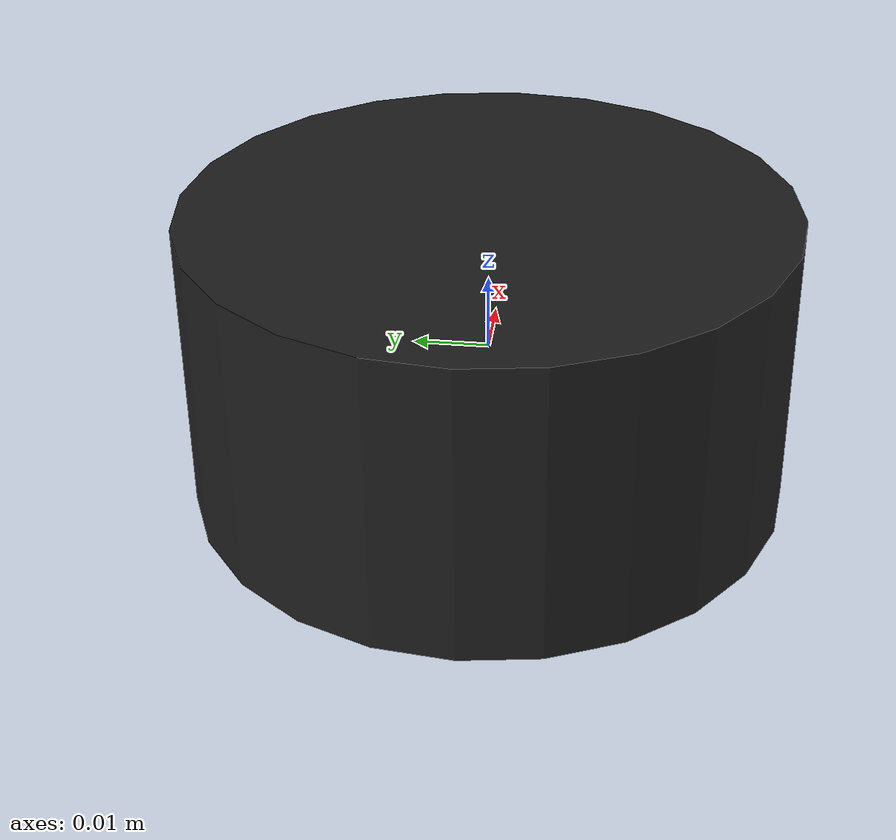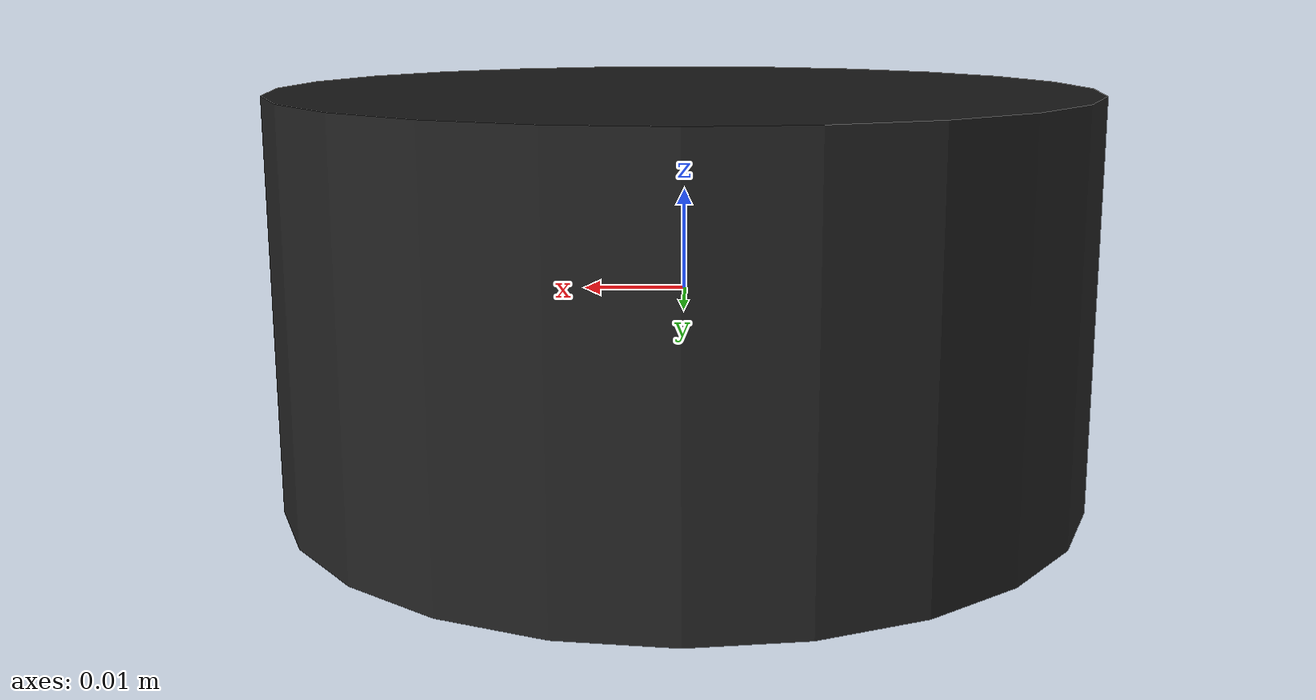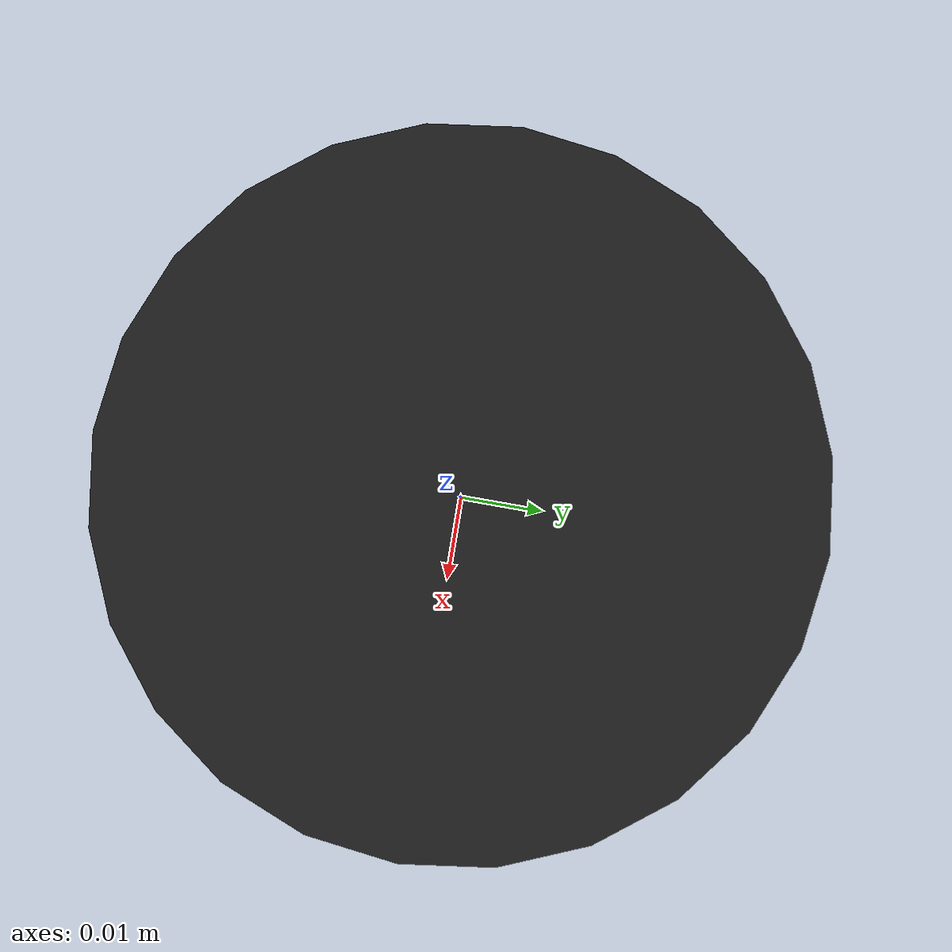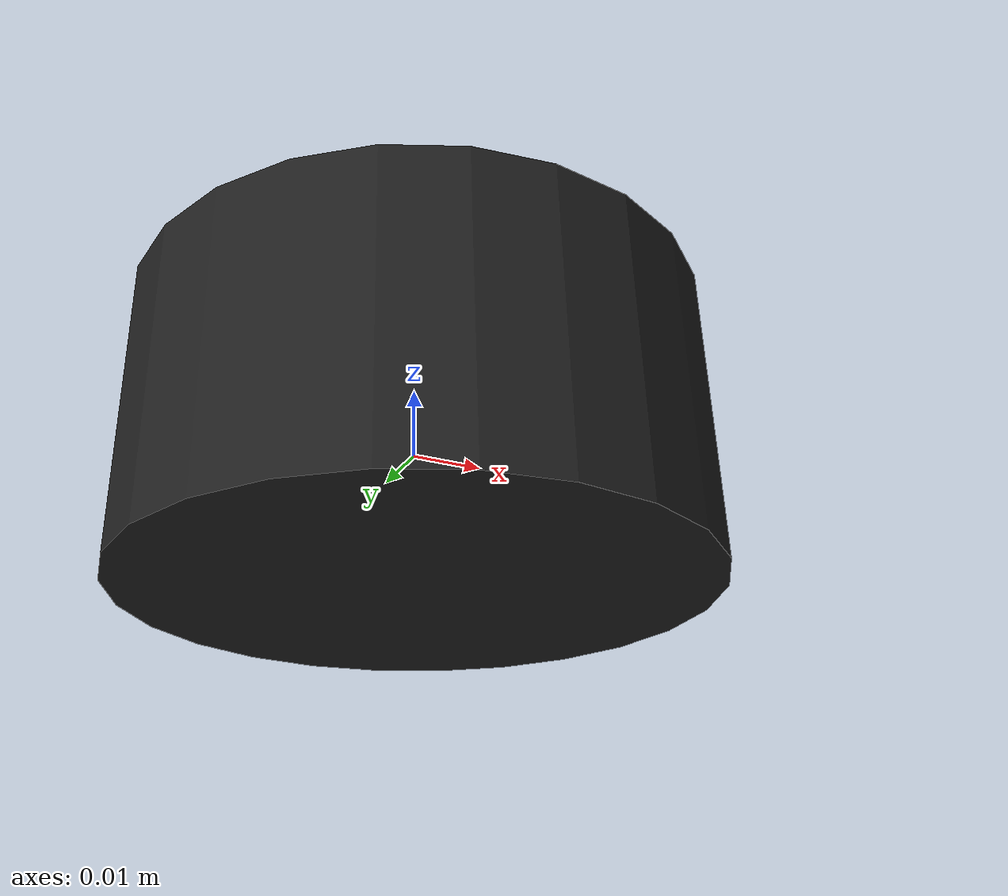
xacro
<?xml version="1.0"?>
<robot name="lidar" xmlns:xacro="http://www.ros.org/wiki/xacro">

    <!-- Create laser reference frame -->
    <link name="laser_link">
        <inertial>
            <mass value="0.1" />
            <origin xyz="0 0 0" />
            <inertia ixx="0.01" ixy="0.0" ixz="0.0"
                        iyy="0.01" iyz="0.0"
                        izz="0.01" />
        </inertial>

        <visual>
            <origin xyz=" 0 0 0 " rpy="0 0 0" />
            <geometry>
                <cylinder length="0.04" radius="0.04"/>
            </geometry>
            <material name="black"/>
        </visual>

        <collision>
            <origin xyz="0.0 0.0 0.0" rpy="0 0 0" />
            <geometry>
                <cylinder length="0.04" radius="0.04"/>
            </geometry>
        </collision>
    </link>

    <!-- 使用rplidarA2参数 -->
    <gazebo reference="laser_link">
        <material>Gazebo/Black</material>
        <sensor name="lidar" type="ray">
            <pose>0 0 0 0 0 0</pose>
            <visualize>false</visualize>
            <update_rate>10</update_rate>
            <ray>
                <scan>
                    <horizontal>
                    <samples>400</samples>
                    <resolution>0.9</resolution>
                    <min_angle>-3.14159265359</min_angle>
                    <max_angle>3.14159265359</max_angle>
                    </horizontal>
                </scan>
                <range>
                    <min>0.3</min>
                    <max>12</max> <!-- 测距距离仅保留分辨率为1%的部分 -->
                    <resolution>0.01</resolution>
                </range>
                <noise>
                    <type>gaussian</type>
                    <mean>0.0</mean>
                    <stddev>0.01</stddev>
                </noise>
            </ray>
            <plugin name="gazebo_lidar" filename="libgazebo_ros_laser.so">
                <topicName>/scan</topicName>
                <frameName>laser_link</frameName>
            </plugin>
        </sensor>
    </gazebo>
</robot>
